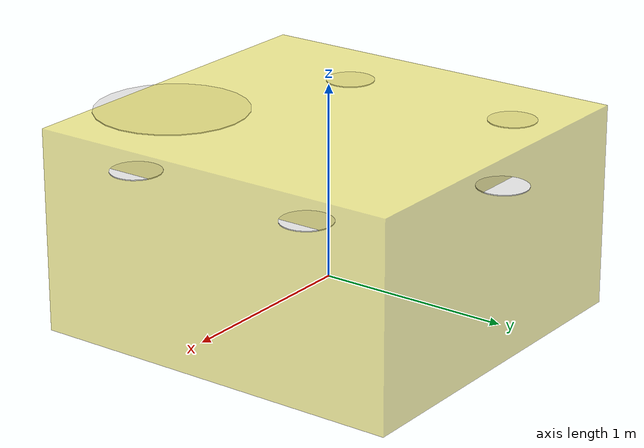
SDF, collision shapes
<sdf version='1.5'>

  <model name='motherdrone'>
    <!-- Typhoon H body -->
    <pose>0 0 0.26 0 0 3.1415927</pose>

    <link name='base_link'>
      <pose>0 0 .35 0 0 0</pose>
      <inertial>
        <!-- rear reference point X: -100.044mm, CAD offset: 1001.049mm -->
        <!-- top reference point Z: 33.8663mm, CAD offset: 42.8698mm -->
        <pose>0.001005 0 -0.0090035 0 0 0</pose>
      <mass  value="21.6534271101248" />
      <inertia ixx="0.32693630942717"
        ixy="5.7909805151449E-06"
        ixz="3.97821538982226E-06"
        iyy="0.475061081262971"
        iyz="9.93303005218849E-05"
        izz="0.202144960475972" />

      </inertial>

      <collision name='base_link_collision'>
        <pose>0 0 -.3 0 0 0</pose>
        <geometry>
          <box>
            <size>1.9 2 1.05</size>
          </box>
        </geometry>
        <surface>
          <contact>
            <ode>
              <min_depth>0.001</min_depth>
              <max_vel>0</max_vel>
            </ode>
          </contact>
          <friction>
            <ode>
              <mu>1</mu>
              <mu2>1</mu2>
            </ode>
          </friction>
        </surface>
      </collision>

      <visual name='base_link_visual'>
        <pose>0 0 0 1.57 0 0</pose>

        <geometry>
          <mesh>
            <scale>1.00 1.00 1.00</scale>
            <uri>model://motherdrone_ardupilot/meshes/md_base_link.stl</uri>
          </mesh>
        </geometry>
        <material>
          <script>
            <name>Gazebo/YellowTransparent</name>
            <uri>file://media/materials/scripts/gazebo.material</uri>
          </script>
        </material>
      </visual>

      <gravity>1</gravity>
      <velocity_decay/>
      <self_collide>0</self_collide>
    </link>

    <link name='imu_link'>
      <pose>0 0 0 0 0 3.1415927</pose>
      <inertial>
        <pose>0 0 0 0 0 0</pose>
        <mass>0.015</mass>
        <inertia>
          <ixx>1e-05</ixx>
          <ixy>0</ixy>
          <ixz>0</ixz>
          <iyy>1e-05</iyy>
          <iyz>0</iyz>
          <izz>1e-05</izz>
        </inertia>
      </inertial>
      <sensor name="imu_sensor" type="imu">
        <pose>0 0 0 3.141593 0 0</pose>
        <always_on>1</always_on>
        <update_rate>1000.0</update_rate>
      </sensor>
    </link>
    <joint name='imu_joint' type='revolute'>
      <child>imu_link</child>
      <parent>base_link</parent>
      <axis>
        <xyz>1 0 0</xyz>
        <limit>
          <lower>0</lower>
          <upper>0</upper>
          <effort>0</effort>
          <velocity>0</velocity>
        </limit>
        <dynamics>
          <damping>1.0</damping>
        </dynamics>
        <use_parent_model_frame>1</use_parent_model_frame>
      </axis>
    </joint>

    <link name='rotor_4'>
      <pose>0.825 0.465 0.4572 0 0 1.57</pose>
      <inertial>
        <pose>0 0 0 0 0 0</pose>
        <mass>0.005</mass>
        <inertia>
          <ixx>9.75e-07</ixx>
          <ixy>0</ixy>
          <ixz>0</ixz>
          <iyy>0.000273104</iyy>
          <iyz>0</iyz>
          <izz>0.000274004</izz>
        </inertia>
      </inertial>
      <collision name='rotor_4_collision'>
        <pose>0 0 0 0 0 0</pose>
        <geometry>
          <cylinder>
            <length>0.005</length>
            <radius>0.128</radius>
          </cylinder>
        </geometry>
        <surface>
          <contact>
            <ode/>
          </contact>
          <friction>
            <ode/>
          </friction>
        </surface>
      </collision>
      <visual name='rotor_4_visual'>
        <pose>0 0 0 0 0 0</pose>
        <geometry>
          <mesh>
            <scale>0.0025 0.0025 0.0025</scale>
            <uri>model://motherdrone_ardupilot/meshes/ccw_centered.stl</uri>
          </mesh>
        </geometry>
        <material>
          <script>
            <name>Gazebo/White</name>
            <uri>file://media/materials/scripts/gazebo.material</uri>
          </script>
        </material>
      </visual>

      <gravity>1</gravity>
      <velocity_decay/>
      <self_collide>0</self_collide>
    </link>
    <joint name='rotor_4_joint' type='revolute'>
      <child>rotor_4</child>
      <parent>base_link</parent>
      <axis>
        <xyz>0 0 1</xyz>
        <limit>
          <lower>-1e+16</lower>
          <upper>1e+16</upper>
          <effort>10</effort>
          <velocity>-1</velocity>
        </limit>
        <dynamics>
          <damping>0.005</damping>
        </dynamics>
        <use_parent_model_frame>1</use_parent_model_frame>
      </axis>
      <physics>
        <ode>
          <implicit_spring_damper>1</implicit_spring_damper>
        </ode>
      </physics>
    </joint>

    <link name='rotor_5'>
      <pose>-0.8975 0.46 0.4622 0 0 1.57</pose>
      <inertial>
        <pose>0 0 0 0 0 0</pose>
        <mass>0.005</mass>
        <inertia>
          <ixx>9.75e-07</ixx>
          <ixy>0</ixy>
          <ixz>0</ixz>
          <iyy>0.000273104</iyy>
          <iyz>0</iyz>
          <izz>0.000274004</izz>
        </inertia>
      </inertial>
      <collision name='rotor_5_collision'>
        <pose>0 0 0 0 0 0</pose>
        <geometry>
          <cylinder>
            <length>0.005</length>
            <radius>0.128</radius>
          </cylinder>
        </geometry>
        <surface>
          <contact>
            <ode/>
          </contact>
          <friction>
            <ode/>
          </friction>
        </surface>
      </collision>
      <visual name='rotor_5_visual'>
        <pose>0 0 0 0 0 0</pose>
        <geometry>
          <mesh>
            <scale>0.0025 0.0025 0.0025</scale>
            <uri>model://motherdrone_ardupilot/meshes/ccw_centered.stl</uri>
          </mesh>
        </geometry>
        <material>
          <script>
            <name>Gazebo/White</name>
            <uri>file://media/materials/scripts/gazebo.material</uri>
          </script>
        </material>
      </visual>

      <gravity>1</gravity>
      <velocity_decay/>
      <self_collide>0</self_collide>
    </link>
    <joint name='rotor_5_joint' type='revolute'>
      <child>rotor_5</child>
      <parent>base_link</parent>
      <axis>
        <xyz>0 0 1</xyz>
        <limit>
          <lower>-1e+16</lower>
          <upper>1e+16</upper>
          <effort>10</effort>
          <velocity>-1</velocity>
        </limit>
        <dynamics>
          <damping>0.005</damping>
        </dynamics>
        <use_parent_model_frame>1</use_parent_model_frame>
      </axis>
      <physics>
        <ode>
          <implicit_spring_damper>1</implicit_spring_damper>
        </ode>
      </physics>
    </joint>

    <link name='rotor_1'>
      <pose>-.035 .96 0.4322 0 0 1.57</pose>
      <inertial>
        <pose>0 0 0 0 0 0</pose>
        <mass>0.005</mass>
        <inertia>
          <ixx>9.75e-07</ixx>
          <ixy>0</ixy>
          <ixz>0</ixz>
          <iyy>0.000273104</iyy>
          <iyz>0</iyz>
          <izz>0.000274004</izz>
        </inertia>
      </inertial>
      <collision name='rotor_1_collision'>
        <pose>0 0 0 0 0 0</pose>
        <geometry>
          <cylinder>
            <length>0.005</length>
            <radius>0.405</radius>
          </cylinder>
        </geometry>
        <surface>
          <contact>
            <ode/>
          </contact>
          <friction>
            <ode/>
          </friction>
        </surface>
      </collision>
      <visual name='rotor_1_visual'>
        <pose>.0035 -.6065 -.185 0 0 0</pose>
        <geometry>
          <mesh>
            <scale>0.0025 0.0025 0.0025</scale>
            <uri>model://motherdrone_ardupilot/meshes/prop_cw_assembly_remeshed_v3.stl</uri>
          </mesh>
        </geometry>
        <material>
          <script>
            <name>Gazebo/White</name>
            <uri>file://media/materials/scripts/gazebo.material</uri>
          </script>
        </material>
      </visual>

      <gravity>1</gravity>
      <velocity_decay/>
      <self_collide>0</self_collide>
    </link>
    <joint name='rotor_1_joint' type='revolute'>
      <child>rotor_1</child>
      <parent>base_link</parent>
      <axis>
        <xyz>0 0 1</xyz>
        <limit>
          <lower>-1e+16</lower>
          <upper>1e+16</upper>
          <effort>10</effort>
          <velocity>-1</velocity>
        </limit>
        <dynamics>
          <damping>0.005</damping>
        </dynamics>
        <use_parent_model_frame>1</use_parent_model_frame>
      </axis>
      <physics>
        <ode>
          <implicit_spring_damper>1</implicit_spring_damper>
        </ode>
      </physics>
    </joint>

    <link name='rotor_6'>
      <pose>0.83 -0.53 0.4372 0 0 1.57</pose>
      <inertial>
        <pose>0 0 0 0 0 0</pose>
        <mass>0.005</mass>
        <inertia>
          <ixx>9.75e-07</ixx>
          <ixy>0</ixy>
          <ixz>0</ixz>
          <iyy>0.000273104</iyy>
          <iyz>0</iyz>
          <izz>0.000274004</izz>
        </inertia>
      </inertial>
      <collision name='rotor_6_collision'>
        <pose>0 0 0 0 0 0</pose>
        <geometry>
          <cylinder>
            <length>0.005</length>
            <radius>0.128</radius>
          </cylinder>
        </geometry>
        <surface>
          <contact>
            <ode/>
          </contact>
          <friction>
            <ode/>
          </friction>
        </surface>
      </collision>
      <visual name='rotor_6_visual'>
        <pose>0 0 0 0 0 0</pose>
        <geometry>
          <mesh>
            <scale>0.0025 0.0025 0.0025</scale>
            <uri>model://motherdrone_ardupilot/meshes/cw_centered.stl</uri>
          </mesh>
        </geometry>
        <material>
          <script>
            <name>Gazebo/White</name>
            <uri>file://media/materials/scripts/gazebo.material</uri>
          </script>
        </material>
      </visual>

      <gravity>1</gravity>
      <velocity_decay/>
      <self_collide>0</self_collide>
    </link>
    <joint name='rotor_6_joint' type='revolute'>
      <child>rotor_6</child>
      <parent>base_link</parent>
      <axis>
        <xyz>0 0 1</xyz>
        <limit>
          <lower>-1e+16</lower>
          <upper>1e+16</upper>
          <effort>10</effort>
          <velocity>-1</velocity>
        </limit>
        <dynamics>
          <damping>0.005</damping>
        </dynamics>
        <use_parent_model_frame>1</use_parent_model_frame>
      </axis>
      <physics>
        <ode>
          <implicit_spring_damper>1</implicit_spring_damper>
        </ode>
      </physics>
    </joint>

    <link name='rotor_2'>
      <pose>-.04 -1.025 0.4572 0 0 1.57</pose>
      <inertial>
        <pose>0 0 0 0 0 0</pose>
        <mass>0.005</mass>
        <inertia>
          <ixx>9.75e-07</ixx>
          <ixy>0</ixy>
          <ixz>0</ixz>
          <iyy>0.000273104</iyy>
          <iyz>0</iyz>
          <izz>0.000274004</izz>
        </inertia>
      </inertial>
      <collision name='rotor_2_collision'>
        <pose>0 0 0 0 0 0</pose>
        <geometry>
          <cylinder>
            <length>0.005</length>
            <radius>0.128</radius>
          </cylinder>
        </geometry>
        <surface>
          <contact>
            <ode/>
          </contact>
          <friction>
            <ode/>
          </friction>
        </surface>
      </collision>
      <visual name='rotor_2_visual'>
        <pose>0 0 0 0 0 0</pose>
        <geometry>
          <mesh>
            <scale>0.0025 0.0025 0.0025</scale>
            <uri>model://motherdrone_ardupilot/meshes/ccw_centered.stl</uri>
          </mesh>
        </geometry>
        <material>
          <script>
            <name>Gazebo/White</name>
            <uri>file://media/materials/scripts/gazebo.material</uri>
          </script>
        </material>
      </visual>

      <gravity>1</gravity>
      <velocity_decay/>
      <self_collide>0</self_collide>
    </link>
    <joint name='rotor_2_joint' type='revolute'>
      <child>rotor_2</child>
      <parent>base_link</parent>
      <axis>
        <xyz>0 0 1</xyz>
        <limit>
          <lower>-1e+16</lower>
          <upper>1e+16</upper>
          <effort>10</effort>
          <velocity>-1</velocity>
        </limit>
        <dynamics>
          <damping>0.005</damping>
        </dynamics>
        <use_parent_model_frame>1</use_parent_model_frame>
      </axis>
      <physics>
        <ode>
          <implicit_spring_damper>1</implicit_spring_damper>
        </ode>
      </physics>
    </joint>

    <link name='rotor_3'>
      <pose>-0.89 -0.53 0.4372 0 0 1.57</pose>
      <inertial>
        <pose>0 0 0 0 0 0</pose>
        <mass>0.005</mass>
        <inertia>
          <ixx>9.75e-07</ixx>
          <ixy>0</ixy>
          <ixz>0</ixz>
          <iyy>0.000273104</iyy>
          <iyz>0</iyz>
          <izz>0.000274004</izz>
        </inertia>
      </inertial>
      <collision name='rotor_3_collision'>
        <pose>0 0 0 0 0 0</pose>
        <geometry>
          <cylinder>
            <length>0.005</length>
            <radius>0.128</radius>
          </cylinder>
        </geometry>
        <surface>
          <contact>
            <ode/>
          </contact>
          <friction>
            <ode/>
          </friction>
        </surface>
      </collision>
      <visual name='rotor_3_visual'>
        <pose>0 0 0 0 0 0</pose>
        <geometry>
          <mesh>
            <scale>0.0025 0.0025 0.0025</scale>
            <uri>model://motherdrone_ardupilot/meshes/cw_centered.stl</uri>
          </mesh>
        </geometry>
        <material>
          <script>
            <name>Gazebo/White</name>
            <uri>file://media/materials/scripts/gazebo.material</uri>
          </script>
        </material>
      </visual>

      <gravity>1</gravity>
      <velocity_decay/>
      <self_collide>0</self_collide>
    </link>
    <joint name='rotor_3_joint' type='revolute'>
      <child>rotor_3</child>
      <parent>base_link</parent>
      <axis>
        <xyz>0 0 1</xyz>
        <limit>
          <lower>-1e+16</lower>
          <upper>1e+16</upper>
          <effort>10</effort>
          <velocity>-1</velocity>
        </limit>
        <dynamics>
          <damping>0.005</damping>
        </dynamics>
        <use_parent_model_frame>1</use_parent_model_frame>
      </axis>
      <physics>
        <ode>
          <implicit_spring_damper>1</implicit_spring_damper>
        </ode>
      </physics>
    </joint>

    <!-- plugins -->
    <plugin name="rotor_1_blade_1" filename="libLiftDragPlugin.so">
      <a0>0.3</a0>
      <alpha_stall>1.4</alpha_stall>
      <cla>4.500</cla>
      <cda>0.10</cda>
      <cma>0.00</cma>
      <cla_stall>-0.025</cla_stall>
      <cda_stall>0.0</cda_stall>
      <cma_stall>0.0</cma_stall>
      <area>0.002</area>
      <air_density>1.2041</air_density>
      <cp>0.0 0.084 0</cp>
      <forward>1 0 0</forward>
      <upward>0 0 1</upward>
      <link_name>rotor_1</link_name>
    </plugin>
    <plugin name="rotor_1_blade_2" filename="libLiftDragPlugin.so">
      <a0>0.3</a0>
      <alpha_stall>1.4</alpha_stall>
      <cla>4.500</cla>
      <cda>0.10</cda>
      <cma>0.00</cma>
      <cla_stall>-0.025</cla_stall>
      <cda_stall>0.0</cda_stall>
      <cma_stall>0.0</cma_stall>
      <area>0.002</area>
      <air_density>1.2041</air_density>
      <cp>0.0 -0.084 0</cp>
      <forward>-1 0 0</forward>
      <upward>0 0 1</upward>
      <link_name>rotor_1</link_name>
    </plugin>

    <plugin name="rotor_2_blade_1" filename="libLiftDragPlugin.so">
      <a0>0.3</a0>
      <alpha_stall>1.4</alpha_stall>
      <cla>4.500</cla>
      <cda>0.10</cda>
      <cma>0.00</cma>
      <cla_stall>-0.025</cla_stall>
      <cda_stall>0.0</cda_stall>
      <cma_stall>0.0</cma_stall>
      <area>0.002</area>
      <air_density>1.2041</air_density>
      <cp>0.0 0.084 0</cp>
      <forward>-1 0 0</forward>
      <upward>0 0 1</upward>
      <link_name>rotor_2</link_name>
    </plugin>

    <plugin name="rotor_2_blade_2" filename="libLiftDragPlugin.so">
      <a0>0.3</a0>
      <alpha_stall>1.4</alpha_stall>
      <cla>4.500</cla>
      <cda>0.10</cda>
      <cma>0.00</cma>
      <cla_stall>-0.025</cla_stall>
      <cda_stall>0.0</cda_stall>
      <cma_stall>0.0</cma_stall>
      <area>0.002</area>
      <air_density>1.2041</air_density>
      <cp>0.0 -0.084 0</cp>
      <forward>1 0 0</forward>
      <upward>0 0 1</upward>
      <link_name>rotor_2</link_name>
    </plugin>

    <plugin name="rotor_3_blade_1" filename="libLiftDragPlugin.so">
      <a0>0.3</a0>
      <alpha_stall>1.4</alpha_stall>
      <cla>4.500</cla>
      <cda>0.10</cda>
      <cma>0.00</cma>
      <cla_stall>-0.025</cla_stall>
      <cda_stall>0.0</cda_stall>
      <cma_stall>0.0</cma_stall>
      <area>0.002</area>
      <air_density>1.2041</air_density>
      <cp>0.0 0.084 0</cp>
      <forward>1 0 0</forward>
      <upward>0 0 1</upward>
      <link_name>rotor_3</link_name>
    </plugin>
    <plugin name="rotor_3_blade_2" filename="libLiftDragPlugin.so">
      <a0>0.3</a0>
      <alpha_stall>1.4</alpha_stall>
      <cla>4.500</cla>
      <cda>0.10</cda>
      <cma>0.00</cma>
      <cla_stall>-0.025</cla_stall>
      <cda_stall>0.0</cda_stall>
      <cma_stall>0.0</cma_stall>
      <area>0.002</area>
      <air_density>1.2041</air_density>
      <cp>0.0 -0.084 0</cp>
      <forward>-1 0 0</forward>
      <upward>0 0 1</upward>
      <link_name>rotor_3</link_name>
    </plugin>

    <plugin name="rotor_4_blade_1" filename="libLiftDragPlugin.so">
      <a0>0.3</a0>
      <alpha_stall>1.4</alpha_stall>
      <cla>4.500</cla>
      <cda>0.10</cda>
      <cma>0.00</cma>
      <cla_stall>-0.025</cla_stall>
      <cda_stall>0.0</cda_stall>
      <cma_stall>0.0</cma_stall>
      <area>0.002</area>
      <air_density>1.2041</air_density>
      <cp>0.0 0.084 0</cp>
      <forward>-1 0 0</forward>
      <upward>0 0 1</upward>
      <link_name>rotor_4</link_name>
    </plugin>
    <plugin name="rotor_4_blade_2" filename="libLiftDragPlugin.so">
      <a0>0.3</a0>
      <alpha_stall>1.4</alpha_stall>
      <cla>4.500</cla>
      <cda>0.10</cda>
      <cma>0.00</cma>
      <cla_stall>-0.025</cla_stall>
      <cda_stall>0.0</cda_stall>
      <cma_stall>0.0</cma_stall>
      <area>0.002</area>
      <air_density>1.2041</air_density>
      <cp>0.0 -0.084 0</cp>
      <forward>1 0 0</forward>
      <upward>0 0 1</upward>
      <link_name>rotor_4</link_name>
    </plugin>

    <plugin name="rotor_5_blade_1" filename="libLiftDragPlugin.so">
      <a0>0.3</a0>
      <alpha_stall>1.4</alpha_stall>
      <cla>4.500</cla>
      <cda>0.10</cda>
      <cma>0.00</cma>
      <cla_stall>-0.025</cla_stall>
      <cda_stall>0.0</cda_stall>
      <cma_stall>0.0</cma_stall>
      <area>0.002</area>
      <air_density>1.2041</air_density>
      <cp>0.0 0.084 0</cp>
      <forward>-1 0 0</forward>
      <upward>0 0 1</upward>
      <link_name>rotor_5</link_name>
    </plugin>
    <plugin name="rotor_5_blade_2" filename="libLiftDragPlugin.so">
      <a0>0.3</a0>
      <alpha_stall>1.4</alpha_stall>
      <cla>4.500</cla>
      <cda>0.10</cda>
      <cma>0.00</cma>
      <cla_stall>-0.025</cla_stall>
      <cda_stall>0.0</cda_stall>
      <cma_stall>0.0</cma_stall>
      <area>0.002</area>
      <air_density>1.2041</air_density>
      <cp>0.0 -0.084 0</cp>
      <forward>1 0 0</forward>
      <upward>0 0 1</upward>
      <link_name>rotor_5</link_name>
    </plugin>

    <plugin name="rotor_6_blade_1" filename="libLiftDragPlugin.so">
      <a0>0.3</a0>
      <alpha_stall>1.4</alpha_stall>
      <cla>4.500</cla>
      <cda>0.10</cda>
      <cma>0.00</cma>
      <cla_stall>-0.025</cla_stall>
      <cda_stall>0.0</cda_stall>
      <cma_stall>0.0</cma_stall>
      <area>0.002</area>
      <air_density>1.2041</air_density>
      <cp>0.0 0.084 0</cp>
      <forward>1 0 0</forward>
      <upward>0 0 1</upward>
      <link_name>rotor_6</link_name>
    </plugin>
    <plugin name="rotor_6_blade_2" filename="libLiftDragPlugin.so">
      <a0>0.3</a0>
      <alpha_stall>1.4</alpha_stall>
      <cla>4.500</cla>
      <cda>0.10</cda>
      <cma>0.00</cma>
      <cla_stall>-0.025</cla_stall>
      <cda_stall>0.0</cda_stall>
      <cma_stall>0.0</cma_stall>
      <area>0.002</area>
      <air_density>1.2041</air_density>
      <cp>0.0 -0.084 0</cp>
      <forward>-1 0 0</forward>
      <upward>0 0 1</upward>
      <link_name>rotor_6</link_name>
    </plugin>

    <plugin name="ArduCopter_Plugin" filename="libArduPilotPlugin.so">
      <fdm_addr>127.0.0.1</fdm_addr>
      <fdm_port_in>9002</fdm_port_in>
      <fdm_port_out>9003</fdm_port_out>
      <!--
          Require by APM :
          Only change model and gazebo from XYZ to XY-Z coordinates
      -->
      <modelXYZToAirplaneXForwardZDown>0 0 0 3.141593 0 3.141593</modelXYZToAirplaneXForwardZDown>
      <gazeboXYZToNED>0 0 0 3.141593 0 3.141593</gazeboXYZToNED>
      <imuName>motherdrone::imu_link::imu_sensor</imuName>
      <connectionTimeoutMaxCount>5</connectionTimeoutMaxCount>
      <!--
          incoming control command [0, 1]
          so offset it by 0 to get [0, 1]
          and divide max target by 1.
          offset = 0
          multiplier = 838 max rpm / 1 = 838
        -->
      <control channel="0">
        <type>VELOCITY</type>
        <offset>0</offset>
        <p_gain>0.20</p_gain>
        <i_gain>0</i_gain>
        <d_gain>0</d_gain>
        <i_max>0</i_max>
        <i_min>0</i_min>
        <cmd_max>2.5</cmd_max>
        <cmd_min>-2.5</cmd_min>
        <jointName>rotor_1_joint</jointName>
        <multiplier>-1200</multiplier>
        <controlVelocitySlowdownSim>1</controlVelocitySlowdownSim>
      </control>
      <control channel="1">
        <type>VELOCITY</type>
        <offset>0</offset>
        <p_gain>0.20</p_gain>
        <i_gain>0</i_gain>
        <d_gain>0</d_gain>
        <i_max>0</i_max>
        <i_min>0</i_min>
        <cmd_max>2.5</cmd_max>
        <cmd_min>-2.5</cmd_min>
        <jointName>rotor_2_joint</jointName>
        <multiplier>1200</multiplier>
        <controlVelocitySlowdownSim>1</controlVelocitySlowdownSim>
      </control>
      <control channel="2">
        <type>VELOCITY</type>
        <offset>0</offset>
        <p_gain>0.20</p_gain>
        <i_gain>0</i_gain>
        <d_gain>0</d_gain>
        <i_max>0</i_max>
        <i_min>0</i_min>
        <cmd_max>2.5</cmd_max>
        <cmd_min>-2.5</cmd_min>
        <jointName>rotor_3_joint</jointName>
        <multiplier>-1200</multiplier>
        <controlVelocitySlowdownSim>1</controlVelocitySlowdownSim>
      </control>
      <control channel="3">
        <type>VELOCITY</type>
        <offset>0</offset>
        <p_gain>0.20</p_gain>
        <i_gain>0</i_gain>
        <d_gain>0</d_gain>
        <i_max>0</i_max>
        <i_min>0</i_min>
        <cmd_max>2.5</cmd_max>
        <cmd_min>-2.5</cmd_min>
        <jointName>rotor_4_joint</jointName>
        <multiplier>1200</multiplier>
        <controlVelocitySlowdownSim>1</controlVelocitySlowdownSim>
      </control>
      <control channel="4">
        <type>VELOCITY</type>
        <offset>0</offset>
        <p_gain>0.20</p_gain>
        <i_gain>0</i_gain>
        <d_gain>0</d_gain>
        <i_max>0</i_max>
        <i_min>0</i_min>
        <cmd_max>2.5</cmd_max>
        <cmd_min>-2.5</cmd_min>
        <jointName>rotor_5_joint</jointName>
        <multiplier>1200</multiplier>
        <controlVelocitySlowdownSim>1</controlVelocitySlowdownSim>
      </control>
      <control channel="5">
        <type>VELOCITY</type>
        <offset>0</offset>
        <p_gain>0.20</p_gain>
        <i_gain>0</i_gain>
        <d_gain>0</d_gain>
        <i_max>0</i_max>
        <i_min>0</i_min>
        <cmd_max>2.5</cmd_max>
        <cmd_min>-2.5</cmd_min>
        <jointName>rotor_6_joint</jointName>
        <multiplier>-1200</multiplier>
        <controlVelocitySlowdownSim>1</controlVelocitySlowdownSim>
      </control>
    </plugin>

  </model>
</sdf>
